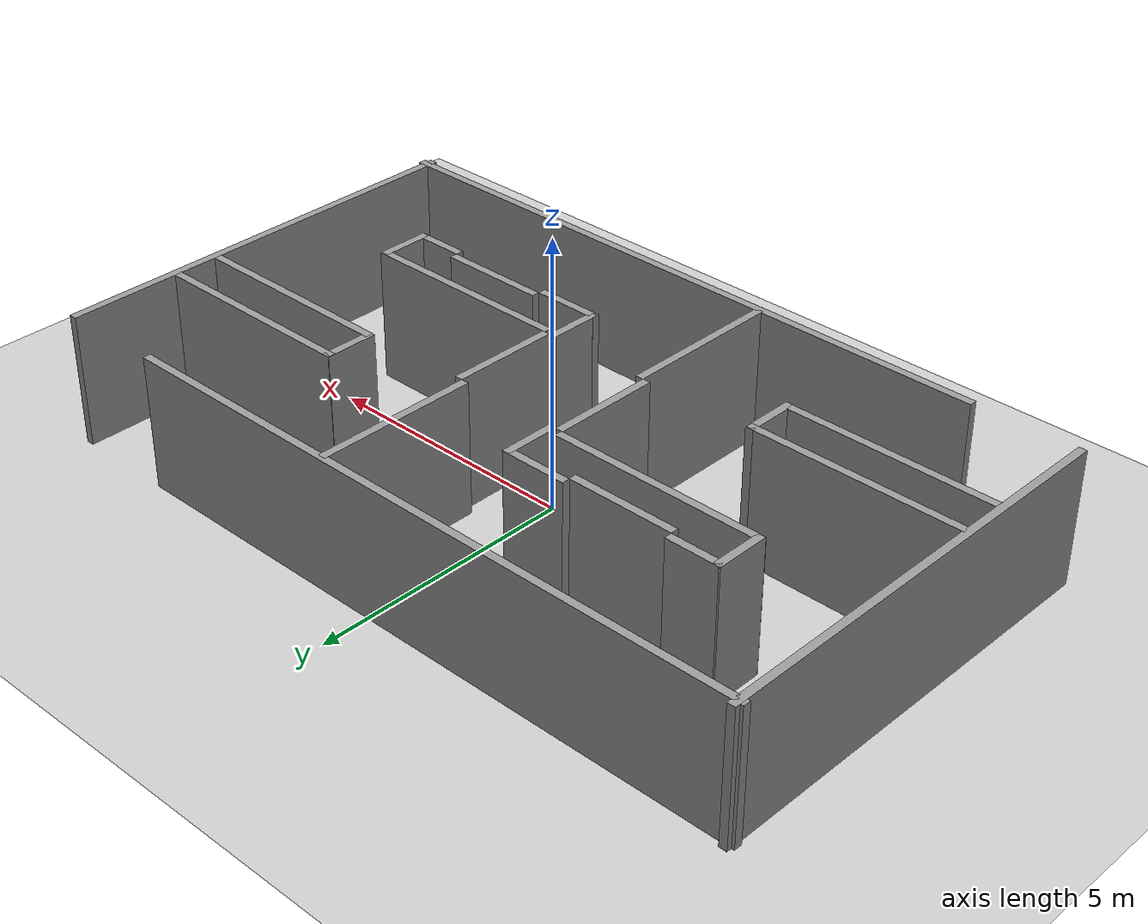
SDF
<sdf version="1.7">
 <world name="default">
  <light name="sun" type="directional">
   <pose>0 0 10 0 -0 0</pose>
   <diffuse>0.8 0.8 0.8 1</diffuse>
   <specular>0.2 0.2 0.2 1</specular>
   <attenuation>
    <range>1000</range>
    <constant>0.9</constant>
    <linear>0.01</linear>
    <quadratic>0.001</quadratic>
   </attenuation>
   <direction>-0.5 0.1 -0.9</direction>
   <spot><inner_angle>0</inner_angle><outer_angle>0</outer_angle><falloff>0</falloff></spot>
  </light>
  <model name="ground_plane">
   <static>1</static>
   <link name="link">
    <collision name="collision">
     <geometry><plane><normal>0 0 1</normal><size>100 100</size></plane></geometry>
     <surface>
      <contact><collide_bitmask>65535</collide_bitmask></contact>
      <friction><ode><mu>100</mu><mu2>50</mu2></ode></friction>
     </surface>
    </collision>
    <visual name="visual">
     <cast_shadows>0</cast_shadows>
     <geometry><plane><normal>0 0 1</normal><size>100 100</size></plane></geometry>
     <material>
      <script><uri>file://media/materials/scripts/gazebo.material</uri><name>Gazebo/Grey</name></script>
     </material>
    </visual>
   </link>
  </model>
  <gravity>0 0 -9.8</gravity>
  <magnetic_field>6e-06 2.3e-05 -4.2e-05</magnetic_field>
  <atmosphere type="adiabatic"/>
  <physics type="ode">
   <max_step_size>0.001</max_step_size>
   <real_time_factor>1</real_time_factor>
   <real_time_update_rate>1000</real_time_update_rate>
  </physics>
  <scene><ambient>0.4 0.4 0.4 1</ambient><background>0.7 0.7 0.7 1</background><shadows>1</shadows></scene>
  <spherical_coordinates>
   <surface_model>EARTH_WGS84</surface_model>
   <latitude_deg>0</latitude_deg>
   <longitude_deg>0</longitude_deg>
   <elevation>0</elevation>
   <heading_deg>0</heading_deg>
  </spherical_coordinates>
  <model name="gazebo_myroom_short">
   <pose>0.008457 0.004606 0 0 -0 0</pose>
   <link name="Wall_0">
    <collision name="Wall_0_Collision">
     <geometry><box><size>8.25 0.15 2.5</size></box></geometry>
     <pose>0 0 1.25 0 -0 0</pose>
    </collision>
    <visual name="Wall_0_Visual">
     <pose>0 0 1.25 0 -0 0</pose>
     <geometry><box><size>8.25 0.15 2.5</size></box></geometry>
     <material>
      <script><uri>file://media/materials/scripts/gazebo.material</uri><name>Gazebo/Grey</name></script>
      <ambient>1 1 1 1</ambient>
     </material>
     <meta><layer>0</layer></meta>
    </visual>
    <pose>-7.15344 0.044776 0 0 -0 1.5708</pose>
   </link>
   <link name="Wall_12">
    <collision name="Wall_12_Collision">
     <geometry><box><size>1 0.15 2.5</size></box></geometry>
     <pose>0 0 1.25 0 -0 0</pose>
    </collision>
    <visual name="Wall_12_Visual">
     <pose>0 0 1.25 0 -0 0</pose>
     <geometry><box><size>1 0.15 2.5</size></box></geometry>
     <material>
      <script><uri>file://media/materials/scripts/gazebo.material</uri><name>Gazebo/Grey</name></script>
      <ambient>1 1 1 1</ambient>
     </material>
     <meta><layer>0</layer></meta>
    </visual>
    <pose>-3.16737 -1.53483 0 0 -0 -1.5708</pose>
   </link>
   <link name="Wall_14">
    <collision name="Wall_14_Collision">
     <geometry><box><size>4 0.15 2.5</size></box></geometry>
     <pose>0 0 1.25 0 -0 0</pose>
    </collision>
    <visual name="Wall_14_Visual">
     <pose>0 0 1.25 0 -0 0</pose>
     <geometry><box><size>4 0.15 2.5</size></box></geometry>
     <material>
      <script><uri>file://media/materials/scripts/gazebo.material</uri><name>Gazebo/Grey</name></script>
      <ambient>1 1 1 1</ambient>
     </material>
     <meta><layer>0</layer></meta>
    </visual>
    <pose>-5.10637 -1.11138 0 0 -0 0</pose>
   </link>
   <link name="Wall_16">
    <collision name="Wall_16_Collision">
     <geometry><box><size>4 0.15 2.5</size></box></geometry>
     <pose>0 0 1.25 0 -0 0</pose>
    </collision>
    <visual name="Wall_16_Visual">
     <pose>0 0 1.25 0 -0 0</pose>
     <geometry><box><size>4 0.15 2.5</size></box></geometry>
     <material>
      <script><uri>file://media/materials/scripts/gazebo.material</uri><name>Gazebo/Grey</name></script>
      <ambient>1 1 1 1</ambient>
     </material>
     <meta><layer>0</layer></meta>
    </visual>
    <pose>-5.09176 -1.95741 0 0 -0 0</pose>
   </link>
   <link name="Wall_2">
    <collision name="Wall_2_Collision">
     <geometry><box><size>12.5 0.15 2.5</size></box></geometry>
     <pose>0 0 1.25 0 -0 0</pose>
    </collision>
    <visual name="Wall_2_Visual">
     <pose>0 0 1.25 0 -0 0</pose>
     <geometry><box><size>12.5 0.15 2.5</size></box></geometry>
     <material>
      <script><uri>file://media/materials/scripts/gazebo.material</uri><name>Gazebo/Grey</name></script>
      <ambient>1 1 1 1</ambient>
     </material>
     <meta><layer>0</layer></meta>
    </visual>
    <pose>-1.03292 4.00522 0 0 -0 3.14159</pose>
   </link>
   <link name="Wall_22">
    <collision name="Wall_22_Collision">
     <geometry><box><size>3 0.15 2.5</size></box></geometry>
     <pose>0 0 1.25 0 -0 0</pose>
    </collision>
    <visual name="Wall_22_Visual">
     <pose>0 0 1.25 0 -0 0</pose>
     <geometry><box><size>3 0.15 2.5</size></box></geometry>
     <material>
      <script><uri>file://media/materials/scripts/gazebo.material</uri><name>Gazebo/Grey</name></script>
      <ambient>1 1 1 1</ambient>
     </material>
     <meta><layer>0</layer></meta>
    </visual>
    <pose>-0.955169 -2.49736 0 0 -0 -1.5708</pose>
   </link>
   <link name="Wall_24">
    <collision name="Wall_24_Collision">
     <geometry><box><size>2 0.15 2.5</size></box></geometry>
     <pose>0 0 1.25 0 -0 0</pose>
    </collision>
    <visual name="Wall_24_Visual">
     <pose>0 0 1.25 0 -0 0</pose>
     <geometry><box><size>2 0.15 2.5</size></box></geometry>
     <material>
      <script><uri>file://media/materials/scripts/gazebo.material</uri><name>Gazebo/Grey</name></script>
      <ambient>1 1 1 1</ambient>
     </material>
     <meta><layer>0</layer></meta>
    </visual>
    <pose>-1.1048 0.001813 0 0 -0 -1.5708</pose>
   </link>
   <link name="Wall_26">
    <collision name="Wall_26_Collision">
     <geometry><box><size>1 0.15 2.5</size></box></geometry>
     <pose>0 0 1.25 0 -0 0</pose>
    </collision>
    <visual name="Wall_26_Visual">
     <pose>0 0 1.25 0 -0 0</pose>
     <geometry><box><size>1 0.15 2.5</size></box></geometry>
     <material>
      <script><uri>file://media/materials/scripts/gazebo.material</uri><name>Gazebo/Grey</name></script>
      <ambient>1 1 1 1</ambient>
     </material>
     <meta><layer>0</layer></meta>
    </visual>
    <pose>-5.08574 1.51183 0 0 -0 1.5708</pose>
   </link>
   <link name="Wall_28">
    <collision name="Wall_28_Collision">
     <geometry><box><size>4 0.15 2.5</size></box></geometry>
     <pose>0 0 1.25 0 -0 0</pose>
    </collision>
    <visual name="Wall_28_Visual">
     <pose>0 0 1.25 0 -0 0</pose>
     <geometry><box><size>4 0.15 2.5</size></box></geometry>
     <material>
      <script><uri>file://media/materials/scripts/gazebo.material</uri><name>Gazebo/Grey</name></script>
      <ambient>1 1 1 1</ambient>
     </material>
     <meta><layer>0</layer></meta>
    </visual>
    <pose>-3.15801 1.07691 0 0 -0 0</pose>
   </link>
   <link name="Wall_30">
    <collision name="Wall_30_Collision">
     <geometry><box><size>1 0.15 2.5</size></box></geometry>
     <pose>0 0 1.25 0 -0 0</pose>
    </collision>
    <visual name="Wall_30_Visual">
     <pose>0 0 1.25 0 -0 0</pose>
     <geometry><box><size>1 0.15 2.5</size></box></geometry>
     <material>
      <script><uri>file://media/materials/scripts/gazebo.material</uri><name>Gazebo/Grey</name></script>
      <ambient>1 1 1 1</ambient>
     </material>
     <meta><layer>0</layer></meta>
    </visual>
    <pose>-4.62854 1.93775 0 0 -0 0</pose>
   </link>
   <link name="Wall_32">
    <collision name="Wall_32_Collision">
     <geometry><box><size>1 0.15 2.5</size></box></geometry>
     <pose>0 0 1.25 0 -0 0</pose>
    </collision>
    <visual name="Wall_32_Visual">
     <pose>0 0 1.25 0 -0 0</pose>
     <geometry><box><size>1 0.15 2.5</size></box></geometry>
     <material>
      <script><uri>file://media/materials/scripts/gazebo.material</uri><name>Gazebo/Grey</name></script>
      <ambient>1 1 1 1</ambient>
     </material>
     <meta><layer>0</layer></meta>
    </visual>
    <pose>-0.952896 1.50414 0 0 -0 -1.5708</pose>
   </link>
   <link name="Wall_34">
    <collision name="Wall_34_Collision">
     <geometry><box><size>1.25 0.15 2.5</size></box></geometry>
     <pose>0 0 1.25 0 -0 0</pose>
    </collision>
    <visual name="Wall_34_Visual">
     <pose>0 0 1.25 0 -0 0</pose>
     <geometry><box><size>1.25 0.15 2.5</size></box></geometry>
     <material>
      <script><uri>file://media/materials/scripts/gazebo.material</uri><name>Gazebo/Grey</name></script>
      <ambient>1 1 1 1</ambient>
     </material>
     <meta><layer>0</layer></meta>
    </visual>
    <pose>-1.50912 1.93691 0 0 -0 0</pose>
   </link>
   <link name="Wall_36">
    <collision name="Wall_36_Collision">
     <geometry><box><size>2 0.15 2.5</size></box></geometry>
     <pose>0 0 1.25 0 -0 0</pose>
    </collision>
    <visual name="Wall_36_Visual">
     <pose>0 0 1.25 0 -0 0</pose>
     <geometry><box><size>2 0.15 2.5</size></box></geometry>
     <material>
      <script><uri>file://media/materials/scripts/gazebo.material</uri><name>Gazebo/Grey</name></script>
      <ambient>1 1 1 1</ambient>
     </material>
     <meta><layer>0</layer></meta>
    </visual>
    <pose>-3.12684 1.7855 0 0 -0 0</pose>
   </link>
   <link name="Wall_38">
    <collision name="Wall_38_Collision">
     <geometry><box><size>2 0.15 2.5</size></box></geometry>
     <pose>0 0 1.25 0 -0 0</pose>
    </collision>
    <visual name="Wall_38_Visual">
     <pose>0 0 1.25 0 -0 0</pose>
     <geometry><box><size>2 0.15 2.5</size></box></geometry>
     <material>
      <script><uri>file://media/materials/scripts/gazebo.material</uri><name>Gazebo/Grey</name></script>
      <ambient>1 1 1 1</ambient>
     </material>
     <meta><layer>0</layer></meta>
    </visual>
    <pose>1.10082 0.007361 0 0 -0 -1.5708</pose>
   </link>
   <link name="Wall_4">
    <collision name="Wall_4_Collision">
     <geometry><box><size>8.25 0.15 2.5</size></box></geometry>
     <pose>0 0 1.25 0 -0 0</pose>
    </collision>
    <visual name="Wall_4_Visual">
     <pose>0 0 1.25 0 -0 0</pose>
     <geometry><box><size>8.25 0.15 2.5</size></box></geometry>
     <material>
      <script><uri>file://media/materials/scripts/gazebo.material</uri><name>Gazebo/Grey</name></script>
      <ambient>1 1 1 1</ambient>
     </material>
     <meta><layer>0</layer></meta>
    </visual>
    <pose>7.13595 -0.044776 0 0 -0 -1.5708</pose>
   </link>
   <link name="Wall_40">
    <collision name="Wall_40_Collision">
     <geometry><box><size>3 0.15 2.5</size></box></geometry>
     <pose>0 0 1.25 0 -0 0</pose>
    </collision>
    <visual name="Wall_40_Visual">
     <pose>0 0 1.25 0 -0 0</pose>
     <geometry><box><size>3 0.15 2.5</size></box></geometry>
     <material>
      <script><uri>file://media/materials/scripts/gazebo.material</uri><name>Gazebo/Grey</name></script>
      <ambient>1 1 1 1</ambient>
     </material>
     <meta><layer>0</layer></meta>
    </visual>
    <pose>0.952248 2.50194 0 0 -0 -1.5708</pose>
   </link>
   <link name="Wall_44">
    <collision name="Wall_44_Collision">
     <geometry><box><size>1.25 0.15 2.5</size></box></geometry>
     <pose>0 0 1.25 0 -0 0</pose>
    </collision>
    <visual name="Wall_44_Visual">
     <pose>0 0 1.25 0 -0 0</pose>
     <geometry><box><size>1.25 0.15 2.5</size></box></geometry>
     <material>
      <script><uri>file://media/materials/scripts/gazebo.material</uri><name>Gazebo/Grey</name></script>
      <ambient>1 1 1 1</ambient>
     </material>
     <meta><layer>0</layer></meta>
    </visual>
    <pose>1.5012 -1.94873 0 0 -0 0</pose>
   </link>
   <link name="Wall_46">
    <collision name="Wall_46_Collision">
     <geometry><box><size>1 0.15 2.5</size></box></geometry>
     <pose>0 0 1.25 0 -0 0</pose>
    </collision>
    <visual name="Wall_46_Visual">
     <pose>0 0 1.25 0 -0 0</pose>
     <geometry><box><size>1 0.15 2.5</size></box></geometry>
     <material>
      <script><uri>file://media/materials/scripts/gazebo.material</uri><name>Gazebo/Grey</name></script>
      <ambient>1 1 1 1</ambient>
     </material>
     <meta><layer>0</layer></meta>
    </visual>
    <pose>4.62528 -1.95181 0 0 -0 0</pose>
   </link>
   <link name="Wall_48">
    <collision name="Wall_48_Collision">
     <geometry><box><size>1 0.15 2.5</size></box></geometry>
     <pose>0 0 1.25 0 -0 0</pose>
    </collision>
    <visual name="Wall_48_Visual">
     <pose>0 0 1.25 0 -0 0</pose>
     <geometry><box><size>1 0.15 2.5</size></box></geometry>
     <material>
      <script><uri>file://media/materials/scripts/gazebo.material</uri><name>Gazebo/Grey</name></script>
      <ambient>1 1 1 1</ambient>
     </material>
     <meta><layer>0</layer></meta>
    </visual>
    <pose>0.952026 -1.48864 0 0 -0 -1.5708</pose>
   </link>
   <link name="Wall_50">
    <collision name="Wall_50_Collision">
     <geometry><box><size>1 0.15 2.5</size></box></geometry>
     <pose>0 0 1.25 0 -0 0</pose>
    </collision>
    <visual name="Wall_50_Visual">
     <pose>0 0 1.25 0 -0 0</pose>
     <geometry><box><size>1 0.15 2.5</size></box></geometry>
     <material>
      <script><uri>file://media/materials/scripts/gazebo.material</uri><name>Gazebo/Grey</name></script>
      <ambient>1 1 1 1</ambient>
     </material>
     <meta><layer>0</layer></meta>
    </visual>
    <pose>5.05284 -1.52382 0 0 -0 -1.5708</pose>
   </link>
   <link name="Wall_52">
    <collision name="Wall_52_Collision">
     <geometry><box><size>4 0.15 2.5</size></box></geometry>
     <pose>0 0 1.25 0 -0 0</pose>
    </collision>
    <visual name="Wall_52_Visual">
     <pose>0 0 1.25 0 -0 0</pose>
     <geometry><box><size>4 0.15 2.5</size></box></geometry>
     <material>
      <script><uri>file://media/materials/scripts/gazebo.material</uri><name>Gazebo/Grey</name></script>
      <ambient>1 1 1 1</ambient>
     </material>
     <meta><layer>0</layer></meta>
    </visual>
    <pose>3.12727 -1.06882 0 0 -0 0</pose>
   </link>
   <link name="Wall_54">
    <collision name="Wall_54_Collision">
     <geometry><box><size>2 0.15 2.5</size></box></geometry>
     <pose>0 0 1.25 0 -0 0</pose>
    </collision>
    <visual name="Wall_54_Visual">
     <pose>0 0 1.25 0 -0 0</pose>
     <geometry><box><size>2 0.15 2.5</size></box></geometry>
     <material>
      <script><uri>file://media/materials/scripts/gazebo.material</uri><name>Gazebo/Grey</name></script>
      <ambient>1 1 1 1</ambient>
     </material>
     <meta><layer>0</layer></meta>
    </visual>
    <pose>3.1233 -1.80108 0 0 -0 0</pose>
   </link>
   <link name="Wall_57">
    <collision name="Wall_57_Collision">
     <geometry><box><size>1 0.15 2.5</size></box></geometry>
     <pose>0 0 1.25 0 -0 0</pose>
    </collision>
    <visual name="Wall_57_Visual">
     <pose>0 0 1.25 0 -0 0</pose>
     <geometry><box><size>1 0.15 2.5</size></box></geometry>
     <material>
      <script><uri>file://media/materials/scripts/gazebo.material</uri><name>Gazebo/Grey</name></script>
      <ambient>1 1 1 1</ambient>
     </material>
     <meta><layer>0</layer></meta>
    </visual>
    <pose>3.14881 1.5057 0 0 -0 -1.5708</pose>
   </link>
   <link name="Wall_59">
    <collision name="Wall_59_Collision">
     <geometry><box><size>4 0.15 2.5</size></box></geometry>
     <pose>0 0 1.25 0 -0 0</pose>
    </collision>
    <visual name="Wall_59_Visual">
     <pose>0 0 1.25 0 -0 0</pose>
     <geometry><box><size>4 0.15 2.5</size></box></geometry>
     <material>
      <script><uri>file://media/materials/scripts/gazebo.material</uri><name>Gazebo/Grey</name></script>
      <ambient>1 1 1 1</ambient>
     </material>
     <meta><layer>0</layer></meta>
    </visual>
    <pose>5.12035 1.07255 0 0 -0 0</pose>
   </link>
   <link name="Wall_6">
    <collision name="Wall_6_Collision">
     <geometry><box><size>12.5 0.15 2.5</size></box></geometry>
     <pose>0 0 1.25 0 -0 0</pose>
    </collision>
    <visual name="Wall_6_Visual">
     <pose>0 0 1.25 0 -0 0</pose>
     <geometry><box><size>12.5 0.15 2.5</size></box></geometry>
     <material>
      <script><uri>file://media/materials/scripts/gazebo.material</uri><name>Gazebo/Grey</name></script>
      <ambient>1 1 1 1</ambient>
     </material>
     <meta><layer>0</layer></meta>
    </visual>
    <pose>1.03292 -4.02271 0 0 -0 0</pose>
   </link>
   <link name="Wall_61">
    <collision name="Wall_61_Collision">
     <geometry><box><size>4 0.15 2.5</size></box></geometry>
     <pose>0 0 1.25 0 -0 0</pose>
    </collision>
    <visual name="Wall_61_Visual">
     <pose>0 0 1.25 0 -0 0</pose>
     <geometry><box><size>4 0.15 2.5</size></box></geometry>
     <material>
      <script><uri>file://media/materials/scripts/gazebo.material</uri><name>Gazebo/Grey</name></script>
      <ambient>1 1 1 1</ambient>
     </material>
     <meta><layer>0</layer></meta>
    </visual>
    <pose>5.08045 1.9344 0 0 -0 0</pose>
   </link>
   <static>1</static>
  </model>
 </world>
</sdf>
